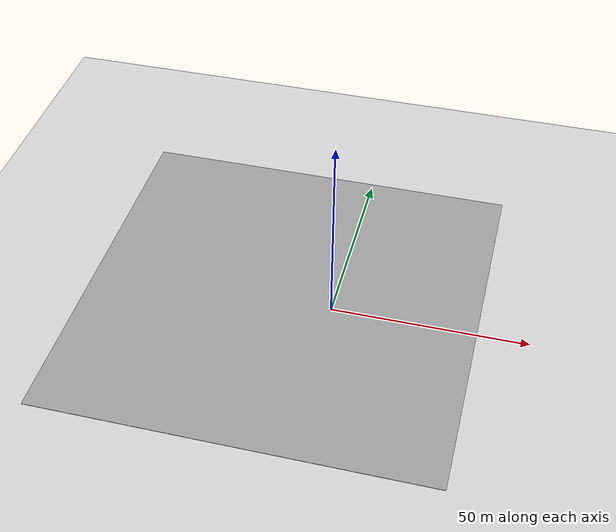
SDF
<sdf version="1.7">
 <world name="default">
  <plugin name="gazebo_occupancy_map" filename="libgazebo_2Dmap_plugin.so">
   <map_resolution>0.05</map_resolution>
   <map_height>0.3</map_height>
   <map_size_x>100</map_size_x>
   <map_size_y>100</map_size_y>
   <init_robot_x>0</init_robot_x>
   <init_robot_y>0</init_robot_y>
  </plugin>
  <light name="sun" type="directional">
   <pose>0 0 10 0 -0 0</pose>
   <diffuse>0.8 0.8 0.8 1</diffuse>
   <specular>0.2 0.2 0.2 1</specular>
   <attenuation>
    <range>1000</range>
    <constant>0.9</constant>
    <linear>0.01</linear>
    <quadratic>0.001</quadratic>
   </attenuation>
   <direction>-0.5 0.1 -0.9</direction>
   <spot><inner_angle>0</inner_angle><outer_angle>0</outer_angle><falloff>0</falloff></spot>
  </light>
  <model name="ground_plane">
   <static>1</static>
   <link name="link">
    <collision name="collision">
     <geometry><plane><normal>0 0 1</normal><size>100 100</size></plane></geometry>
     <surface>
      <contact><collide_bitmask>65535</collide_bitmask></contact>
      <friction><ode><mu>100</mu><mu2>50</mu2></ode></friction>
     </surface>
    </collision>
    <visual name="visual">
     <cast_shadows>0</cast_shadows>
     <geometry><plane><normal>0 0 1</normal><size>100 100</size></plane></geometry>
     <material>
      <script><uri>file://media/materials/scripts/gazebo.material</uri><name>Gazebo/Grey</name></script>
     </material>
    </visual>
   </link>
  </model>
  <gravity>0 0 -9.8</gravity>
  <magnetic_field>6e-06 2.3e-05 -4.2e-05</magnetic_field>
  <atmosphere type="adiabatic"/>
  <physics type="ode">
   <max_step_size>0.001</max_step_size>
   <real_time_factor>1</real_time_factor>
   <real_time_update_rate>1000</real_time_update_rate>
  </physics>
  <scene><ambient>0.4 0.4 0.4 1</ambient><background>0.7 0.7 0.7 1</background><shadows>1</shadows></scene>
  <spherical_coordinates>
   <surface_model>EARTH_WGS84</surface_model>
   <latitude_deg>0</latitude_deg>
   <longitude_deg>0</longitude_deg>
   <elevation>0</elevation>
   <heading_deg>0</heading_deg>
  </spherical_coordinates>
  <model name="ground_plane_0">
   <static>1</static>
   <link name="link">
    <collision name="collision">
     <geometry><plane><normal>0 0 1</normal><size>100 100</size></plane></geometry>
     <surface>
      <contact><collide_bitmask>65535</collide_bitmask></contact>
      <friction><ode><mu>100</mu><mu2>50</mu2></ode></friction>
     </surface>
    </collision>
    <visual name="visual">
     <cast_shadows>0</cast_shadows>
     <geometry><plane><normal>0 0 1</normal><size>100 100</size></plane></geometry>
     <material>
      <script><uri>file://media/materials/scripts/gazebo.material</uri><name>Gazebo/Grey</name></script>
     </material>
    </visual>
   </link>
   <pose>-13.1274 1.85996 0 0 -0 0</pose>
  </model>
 </world>
</sdf>
